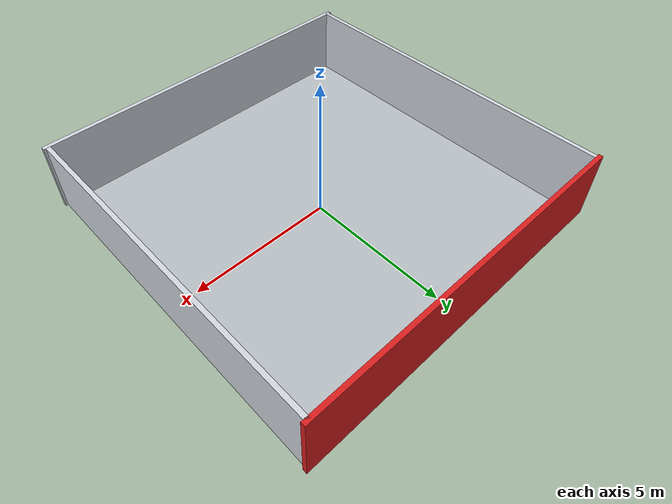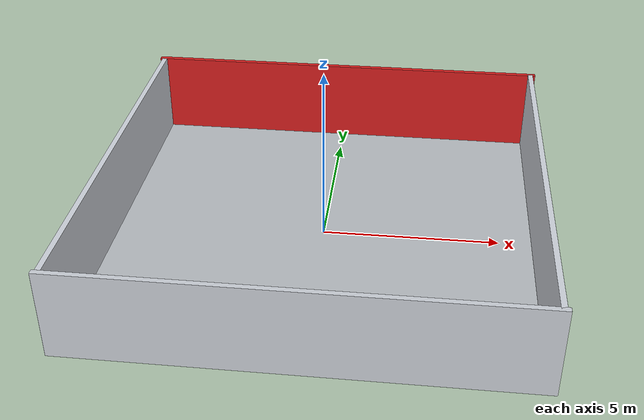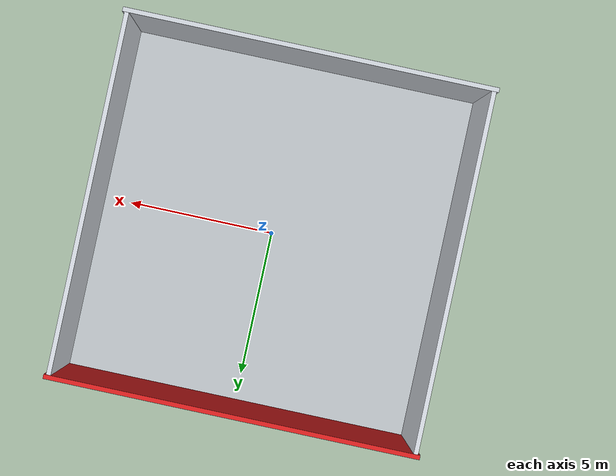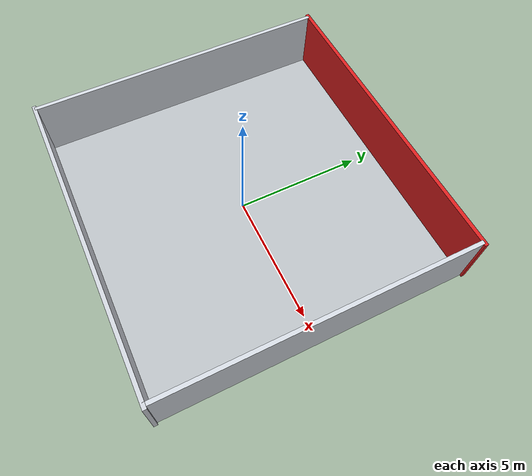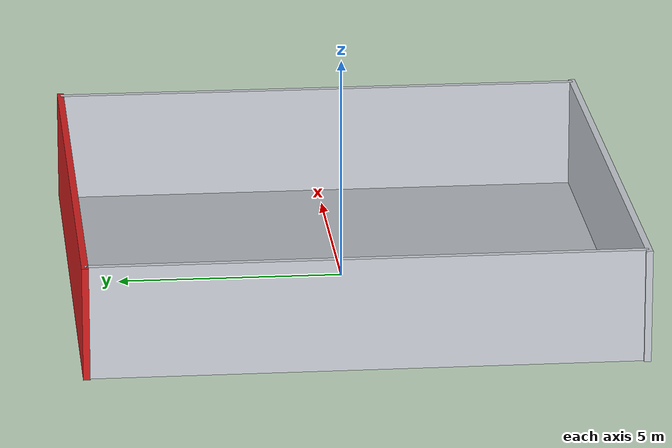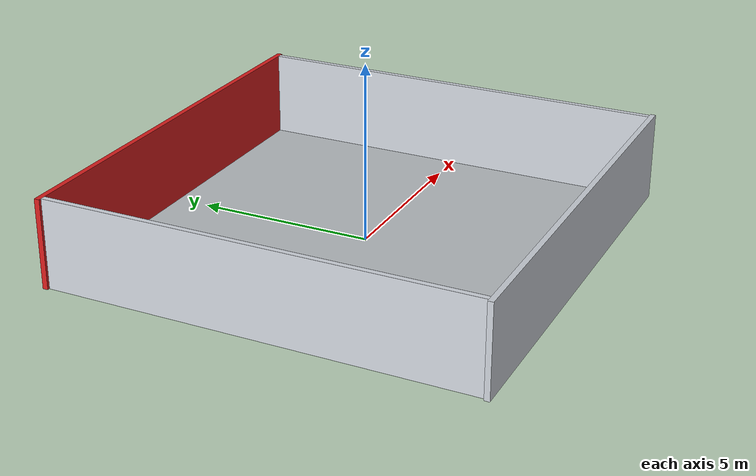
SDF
<sdf version="1.9">
 <world name="lab_room_12x12">
  <physics name="1ms" type="ignored">
   <max_step_size>0.001</max_step_size>
   <real_time_factor>1.0</real_time_factor>
  </physics>
  <plugin filename="gz-sim-physics-system" name="gz::sim::systems::Physics"/>
  <plugin filename="gz-sim-scene-broadcaster-system" name="gz::sim::systems::SceneBroadcaster"/>
  <plugin filename="gz-sim-user-commands-system" name="gz::sim::systems::UserCommands"/>
  <plugin filename="gz-sim-sensors-system" name="gz::sim::systems::Sensors">
   <render_engine>ogre2</render_engine>
  </plugin>
  <plugin filename="gz-sim-imu-system" name="gz::sim::systems::Imu"/>
  <plugin filename="gz-sim-navsat-system" name="gz::sim::systems::NavSat"/>
  <spherical_coordinates>
   <latitude_deg>-35.363262</latitude_deg>
   <longitude_deg>149.165237</longitude_deg>
   <elevation>584</elevation>
   <heading_deg>0</heading_deg>
   <surface_model>EARTH_WGS84</surface_model>
  </spherical_coordinates>
  <light type="directional" name="main_light">
   <cast_shadows>false</cast_shadows>
   <pose>0 0 10 0 0 0</pose>
   <diffuse>1.0 1.0 1.0 1</diffuse>
   <specular>0.5 0.5 0.5 1</specular>
   <direction>0.1 0.1 -1</direction>
  </light>
  <model name="floor">
   <static>true</static>
   <link name="link">
    <collision name="c"><geometry><box><size>12 12 0.05</size></box></geometry></collision>
    <visual name="v">
     <geometry><box><size>12 12 0.05</size></box></geometry>
     <material>
      <ambient>0.72 0.74 0.76 1</ambient>
      <diffuse>0.72 0.74 0.76 1</diffuse>
      <specular>0.1 0.1 0.1 1</specular>
     </material>
    </visual>
   </link>
  </model>
  <model name="wall_north">
   <static>true</static>
   <pose>0 6 1.25 0 0 0</pose>
   <link name="link">
    <collision name="c"><geometry><box><size>12.3 0.15 2.5</size></box></geometry></collision>
    <visual name="v">
     <geometry><box><size>12.3 0.15 2.5</size></box></geometry>
     <material><ambient>0.85 0.12 0.12 1</ambient><diffuse>0.85 0.12 0.12 1</diffuse></material>
    </visual>
   </link>
  </model>
  <model name="wall_south">
   <static>true</static>
   <pose>0 -6 1.25 0 0 0</pose>
   <link name="link">
    <collision name="c"><geometry><box><size>12.3 0.15 2.5</size></box></geometry></collision>
    <visual name="v">
     <geometry><box><size>12.3 0.15 2.5</size></box></geometry>
     <material><ambient>0.80 0.82 0.85 1</ambient><diffuse>0.80 0.82 0.85 1</diffuse></material>
    </visual>
   </link>
  </model>
  <model name="wall_west">
   <static>true</static>
   <pose>-6 0 1.25 0 0 0</pose>
   <link name="link">
    <collision name="c"><geometry><box><size>0.15 12.0 2.5</size></box></geometry></collision>
    <visual name="v">
     <geometry><box><size>0.15 12.0 2.5</size></box></geometry>
     <material><ambient>0.82 0.84 0.87 1</ambient><diffuse>0.82 0.84 0.87 1</diffuse></material>
    </visual>
   </link>
  </model>
  <model name="wall_east">
   <static>true</static>
   <pose>6 0 1.25 0 0 0</pose>
   <link name="link">
    <collision name="c"><geometry><box><size>0.15 12.0 2.5</size></box></geometry></collision>
    <visual name="v">
     <geometry><box><size>0.15 12.0 2.5</size></box></geometry>
     <material><ambient>0.82 0.84 0.87 1</ambient><diffuse>0.82 0.84 0.87 1</diffuse></material>
    </visual>
   </link>
  </model>
 </world>
</sdf>
